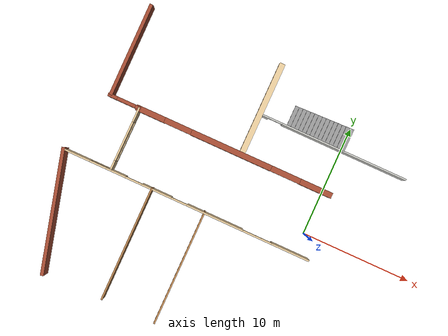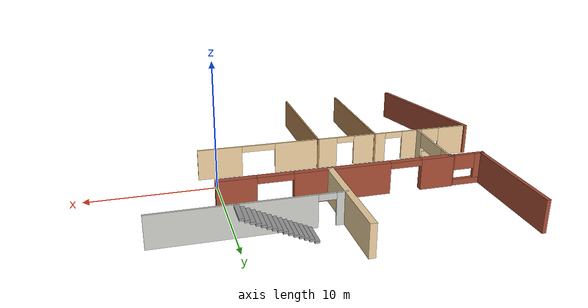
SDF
<sdf version="1.6">
 <model name="Building">
  <pose>-0.973623 0.034241 0 0 -0 0</pose>
  <link name="Stairs_0">
   <visual name="Stairs_0_Visual_0">
    <pose>-4.08117 8.87242 0.083333 0 -0 1.5708</pose>
    <geometry><box><size>2.02255 0.353633 0.166667</size></box></geometry>
    <material>
     <script><uri>file://media/materials/scripts/gazebo.material</uri><name>Gazebo/Grey</name></script>
     <ambient>1 1 1 1</ambient>
    </material>
    <meta><layer>0</layer></meta>
   </visual>
   <collision name="Stairs_0_Collision_0">
    <geometry><box><size>2.02255 0.353633 0.166667</size></box></geometry>
    <pose>-4.08117 8.87242 0.083333 0 -0 1.5708</pose>
   </collision>
   <visual name="Stairs_0_Visual_1">
    <pose>-3.72754 8.87242 0.25 0 -0 1.5708</pose>
    <geometry><box><size>2.02255 0.353633 0.166667</size></box></geometry>
    <material>
     <script><uri>file://media/materials/scripts/gazebo.material</uri><name>Gazebo/Grey</name></script>
     <ambient>1 1 1 1</ambient>
    </material>
    <meta><layer>0</layer></meta>
   </visual>
   <collision name="Stairs_0_Collision_1">
    <geometry><box><size>2.02255 0.353633 0.166667</size></box></geometry>
    <pose>-3.72754 8.87242 0.25 0 -0 1.5708</pose>
   </collision>
   <visual name="Stairs_0_Visual_2">
    <pose>-3.3739 8.87242 0.416667 0 -0 1.5708</pose>
    <geometry><box><size>2.02255 0.353633 0.166667</size></box></geometry>
    <material>
     <script><uri>file://media/materials/scripts/gazebo.material</uri><name>Gazebo/Grey</name></script>
     <ambient>1 1 1 1</ambient>
    </material>
    <meta><layer>0</layer></meta>
   </visual>
   <collision name="Stairs_0_Collision_2">
    <geometry><box><size>2.02255 0.353633 0.166667</size></box></geometry>
    <pose>-3.3739 8.87242 0.416667 0 -0 1.5708</pose>
   </collision>
   <visual name="Stairs_0_Visual_3">
    <pose>-3.02027 8.87242 0.583333 0 -0 1.5708</pose>
    <geometry><box><size>2.02255 0.353633 0.166667</size></box></geometry>
    <material>
     <script><uri>file://media/materials/scripts/gazebo.material</uri><name>Gazebo/Grey</name></script>
     <ambient>1 1 1 1</ambient>
    </material>
    <meta><layer>0</layer></meta>
   </visual>
   <collision name="Stairs_0_Collision_3">
    <geometry><box><size>2.02255 0.353633 0.166667</size></box></geometry>
    <pose>-3.02027 8.87242 0.583333 0 -0 1.5708</pose>
   </collision>
   <visual name="Stairs_0_Visual_4">
    <pose>-2.66664 8.87242 0.75 0 -0 1.5708</pose>
    <geometry><box><size>2.02255 0.353633 0.166667</size></box></geometry>
    <material>
     <script><uri>file://media/materials/scripts/gazebo.material</uri><name>Gazebo/Grey</name></script>
     <ambient>1 1 1 1</ambient>
    </material>
    <meta><layer>0</layer></meta>
   </visual>
   <collision name="Stairs_0_Collision_4">
    <geometry><box><size>2.02255 0.353633 0.166667</size></box></geometry>
    <pose>-2.66664 8.87242 0.75 0 -0 1.5708</pose>
   </collision>
   <visual name="Stairs_0_Visual_5">
    <pose>-2.313 8.87242 0.916667 0 -0 1.5708</pose>
    <geometry><box><size>2.02255 0.353633 0.166667</size></box></geometry>
    <material>
     <script><uri>file://media/materials/scripts/gazebo.material</uri><name>Gazebo/Grey</name></script>
     <ambient>1 1 1 1</ambient>
    </material>
    <meta><layer>0</layer></meta>
   </visual>
   <collision name="Stairs_0_Collision_5">
    <geometry><box><size>2.02255 0.353633 0.166667</size></box></geometry>
    <pose>-2.313 8.87242 0.916667 0 -0 1.5708</pose>
   </collision>
   <visual name="Stairs_0_Visual_6">
    <pose>-1.95937 8.87242 1.08333 0 -0 1.5708</pose>
    <geometry><box><size>2.02255 0.353633 0.166667</size></box></geometry>
    <material>
     <script><uri>file://media/materials/scripts/gazebo.material</uri><name>Gazebo/Grey</name></script>
     <ambient>1 1 1 1</ambient>
    </material>
    <meta><layer>0</layer></meta>
   </visual>
   <collision name="Stairs_0_Collision_6">
    <geometry><box><size>2.02255 0.353633 0.166667</size></box></geometry>
    <pose>-1.95937 8.87242 1.08333 0 -0 1.5708</pose>
   </collision>
   <visual name="Stairs_0_Visual_7">
    <pose>-1.60574 8.87242 1.25 0 -0 1.5708</pose>
    <geometry><box><size>2.02255 0.353633 0.166667</size></box></geometry>
    <material>
     <script><uri>file://media/materials/scripts/gazebo.material</uri><name>Gazebo/Grey</name></script>
     <ambient>1 1 1 1</ambient>
    </material>
    <meta><layer>0</layer></meta>
   </visual>
   <collision name="Stairs_0_Collision_7">
    <geometry><box><size>2.02255 0.353633 0.166667</size></box></geometry>
    <pose>-1.60574 8.87242 1.25 0 -0 1.5708</pose>
   </collision>
   <visual name="Stairs_0_Visual_8">
    <pose>-1.2521 8.87242 1.41667 0 -0 1.5708</pose>
    <geometry><box><size>2.02255 0.353633 0.166667</size></box></geometry>
    <material>
     <script><uri>file://media/materials/scripts/gazebo.material</uri><name>Gazebo/Grey</name></script>
     <ambient>1 1 1 1</ambient>
    </material>
    <meta><layer>0</layer></meta>
   </visual>
   <collision name="Stairs_0_Collision_8">
    <geometry><box><size>2.02255 0.353633 0.166667</size></box></geometry>
    <pose>-1.2521 8.87242 1.41667 0 -0 1.5708</pose>
   </collision>
   <visual name="Stairs_0_Visual_9">
    <pose>-0.898471 8.87242 1.58333 0 -0 1.5708</pose>
    <geometry><box><size>2.02255 0.353633 0.166667</size></box></geometry>
    <material>
     <script><uri>file://media/materials/scripts/gazebo.material</uri><name>Gazebo/Grey</name></script>
     <ambient>1 1 1 1</ambient>
    </material>
    <meta><layer>0</layer></meta>
   </visual>
   <collision name="Stairs_0_Collision_9">
    <geometry><box><size>2.02255 0.353633 0.166667</size></box></geometry>
    <pose>-0.898471 8.87242 1.58333 0 -0 1.5708</pose>
   </collision>
   <visual name="Stairs_0_Visual_10">
    <pose>-0.544838 8.87242 1.75 0 -0 1.5708</pose>
    <geometry><box><size>2.02255 0.353633 0.166667</size></box></geometry>
    <material>
     <script><uri>file://media/materials/scripts/gazebo.material</uri><name>Gazebo/Grey</name></script>
     <ambient>1 1 1 1</ambient>
    </material>
    <meta><layer>0</layer></meta>
   </visual>
   <collision name="Stairs_0_Collision_10">
    <geometry><box><size>2.02255 0.353633 0.166667</size></box></geometry>
    <pose>-0.544838 8.87242 1.75 0 -0 1.5708</pose>
   </collision>
   <visual name="Stairs_0_Visual_11">
    <pose>-0.191204 8.87242 1.91667 0 -0 1.5708</pose>
    <geometry><box><size>2.02255 0.353633 0.166667</size></box></geometry>
    <material>
     <script><uri>file://media/materials/scripts/gazebo.material</uri><name>Gazebo/Grey</name></script>
     <ambient>1 1 1 1</ambient>
    </material>
    <meta><layer>0</layer></meta>
   </visual>
   <collision name="Stairs_0_Collision_11">
    <geometry><box><size>2.02255 0.353633 0.166667</size></box></geometry>
    <pose>-0.191204 8.87242 1.91667 0 -0 1.5708</pose>
   </collision>
   <visual name="Stairs_0_Visual_12">
    <pose>0.162429 8.87242 2.08333 0 -0 1.5708</pose>
    <geometry><box><size>2.02255 0.353633 0.166667</size></box></geometry>
    <material>
     <script><uri>file://media/materials/scripts/gazebo.material</uri><name>Gazebo/Grey</name></script>
     <ambient>1 1 1 1</ambient>
    </material>
    <meta><layer>0</layer></meta>
   </visual>
   <collision name="Stairs_0_Collision_12">
    <geometry><box><size>2.02255 0.353633 0.166667</size></box></geometry>
    <pose>0.162429 8.87242 2.08333 0 -0 1.5708</pose>
   </collision>
   <visual name="Stairs_0_Visual_13">
    <pose>0.516062 8.87242 2.25 0 -0 1.5708</pose>
    <geometry><box><size>2.02255 0.353633 0.166667</size></box></geometry>
    <material>
     <script><uri>file://media/materials/scripts/gazebo.material</uri><name>Gazebo/Grey</name></script>
     <ambient>1 1 1 1</ambient>
    </material>
    <meta><layer>0</layer></meta>
   </visual>
   <collision name="Stairs_0_Collision_13">
    <geometry><box><size>2.02255 0.353633 0.166667</size></box></geometry>
    <pose>0.516062 8.87242 2.25 0 -0 1.5708</pose>
   </collision>
   <visual name="Stairs_0_Visual_14">
    <pose>0.869695 8.87242 2.41667 0 -0 1.5708</pose>
    <geometry><box><size>2.02255 0.353633 0.166667</size></box></geometry>
    <material>
     <script><uri>file://media/materials/scripts/gazebo.material</uri><name>Gazebo/Grey</name></script>
     <ambient>1 1 1 1</ambient>
    </material>
    <meta><layer>0</layer></meta>
   </visual>
   <collision name="Stairs_0_Collision_14">
    <geometry><box><size>2.02255 0.353633 0.166667</size></box></geometry>
    <pose>0.869695 8.87242 2.41667 0 -0 1.5708</pose>
   </collision>
  </link>
  <link name="Wall_17">
   <collision name="Wall_17_Collision">
    <geometry><box><size>8.49148 0.3 2.5</size></box></geometry>
    <pose>0 0 1.25 0 -0 0</pose>
   </collision>
   <visual name="Wall_17_Visual">
    <pose>0 0 1.25 0 -0 0</pose>
    <geometry><box><size>8.49148 0.3 2.5</size></box></geometry>
    <material>
     <script><uri>file://media/materials/scripts/gazebo.material</uri><name>Gazebo/Bricks</name></script>
     <ambient>1 1 1 1</ambient>
    </material>
    <meta><layer>0</layer></meta>
   </visual>
   <pose>-19.1444 8.2625 0 0 -0 1.5708</pose>
  </link>
  <link name="Wall_38">
   <collision name="Wall_38_Collision">
    <geometry><box><size>11.1419 0.3 2.5</size></box></geometry>
    <pose>0 0 1.25 0 -0 0</pose>
   </collision>
   <visual name="Wall_38_Visual">
    <pose>0 0 1.25 0 -0 0</pose>
    <geometry><box><size>11.1419 0.3 2.5</size></box></geometry>
    <material>
     <script><uri>file://media/materials/scripts/gazebo.material</uri><name>Gazebo/Bricks</name></script>
     <ambient>1 1 1 1</ambient>
    </material>
    <meta><layer>0</layer></meta>
   </visual>
   <pose>-19.5334 -7.09324 0 0 -0 1.82991</pose>
  </link>
  <link name="Wall_39">
   <pose>-18.7098 -1.8533 0 0 0 -2.8e-05</pose>
   <visual name="Wall_39_Visual_0">
    <pose>-1.00678 0 1.25 0 -0 0</pose>
    <geometry><box><size>2.56168 0.15 2.5</size></box></geometry>
    <material>
     <script><uri>file://media/materials/scripts/gazebo.material</uri><name>Gazebo/Grey</name></script>
     <ambient>0.921569 0.807843 0.615686 1</ambient>
    </material>
    <meta><layer>0</layer></meta>
   </visual>
   <collision name="Wall_39_Collision_0">
    <geometry><box><size>2.56168 0.15 2.5</size></box></geometry>
    <pose>-1.00678 0 1.25 0 -0 0</pose>
   </collision>
   <visual name="Wall_39_Visual_1">
    <pose>1.28084 0 0.25 0 -0 0</pose>
    <geometry><box><size>2.01356 0.15 0.5</size></box></geometry>
    <material>
     <script><uri>file://media/materials/scripts/gazebo.material</uri><name>Gazebo/Grey</name></script>
     <ambient>0.921569 0.807843 0.615686 1</ambient>
    </material>
    <meta><layer>0</layer></meta>
   </visual>
   <collision name="Wall_39_Collision_1">
    <geometry><box><size>2.01356 0.15 0.5</size></box></geometry>
    <pose>1.28084 0 0.25 0 -0 0</pose>
   </collision>
   <visual name="Wall_39_Visual_2">
    <pose>2.05678 0 1.5 0 -0 0</pose>
    <geometry><box><size>0.46168 0.15 2</size></box></geometry>
    <material>
     <script><uri>file://media/materials/scripts/gazebo.material</uri><name>Gazebo/Grey</name></script>
     <ambient>0.921569 0.807843 0.615686 1</ambient>
    </material>
    <meta><layer>0</layer></meta>
   </visual>
   <collision name="Wall_39_Collision_2">
    <geometry><box><size>0.46168 0.15 2</size></box></geometry>
    <pose>2.05678 0 1.5 0 -0 0</pose>
   </collision>
   <visual name="Wall_39_Visual_3">
    <pose>1.05 0 1.9 0 -0 0</pose>
    <geometry><box><size>1.55187 0.15 1.2</size></box></geometry>
    <material>
     <script><uri>file://media/materials/scripts/gazebo.material</uri><name>Gazebo/Grey</name></script>
     <ambient>0.921569 0.807843 0.615686 1</ambient>
    </material>
    <meta><layer>0</layer></meta>
   </visual>
   <collision name="Wall_39_Collision_3">
    <geometry><box><size>1.55187 0.15 1.2</size></box></geometry>
    <pose>1.05 0 1.9 0 -0 0</pose>
   </collision>
  </link>
  <link name="Wall_40">
   <pose>-16.4724 1.07267 0 0 -0 1.56232</pose>
   <visual name="Wall_40_Visual_0">
    <pose>-2.50508 0 1.25 0 -0 0</pose>
    <geometry><box><size>0.99212 0.15 2.5</size></box></geometry>
    <material>
     <script><uri>file://media/materials/scripts/gazebo.material</uri><name>Gazebo/Grey</name></script>
     <ambient>0.921569 0.807843 0.615686 1</ambient>
    </material>
    <meta><layer>0</layer></meta>
   </visual>
   <collision name="Wall_40_Collision_0">
    <geometry><box><size>0.99212 0.15 2.5</size></box></geometry>
    <pose>-2.50508 0 1.25 0 -0 0</pose>
   </collision>
   <visual name="Wall_40_Visual_1">
    <pose>0.49606 0 0.25 0 -0 0</pose>
    <geometry><box><size>5.01015 0.15 0.5</size></box></geometry>
    <material>
     <script><uri>file://media/materials/scripts/gazebo.material</uri><name>Gazebo/Grey</name></script>
     <ambient>0.921569 0.807843 0.615686 1</ambient>
    </material>
    <meta><layer>0</layer></meta>
   </visual>
   <collision name="Wall_40_Collision_1">
    <geometry><box><size>5.01015 0.15 0.5</size></box></geometry>
    <pose>0.49606 0 0.25 0 -0 0</pose>
   </collision>
   <visual name="Wall_40_Visual_2">
    <pose>2.31017 0 1.5 0 -0 0</pose>
    <geometry><box><size>1.38193 0.15 2</size></box></geometry>
    <material>
     <script><uri>file://media/materials/scripts/gazebo.material</uri><name>Gazebo/Grey</name></script>
     <ambient>0.921569 0.807843 0.615686 1</ambient>
    </material>
    <meta><layer>0</layer></meta>
   </visual>
   <collision name="Wall_40_Collision_2">
    <geometry><box><size>1.38193 0.15 2</size></box></geometry>
    <pose>2.31017 0 1.5 0 -0 0</pose>
   </collision>
   <visual name="Wall_40_Visual_3">
    <pose>-0.194907 0 1.9 0 -0 0</pose>
    <geometry><box><size>3.62822 0.15 1.2</size></box></geometry>
    <material>
     <script><uri>file://media/materials/scripts/gazebo.material</uri><name>Gazebo/Grey</name></script>
     <ambient>0.921569 0.807843 0.615686 1</ambient>
    </material>
    <meta><layer>0</layer></meta>
   </visual>
   <collision name="Wall_40_Collision_3">
    <geometry><box><size>3.62822 0.15 1.2</size></box></geometry>
    <pose>-0.194907 0 1.9 0 -0 0</pose>
   </collision>
  </link>
  <link name="Wall_41">
   <pose>-17.825 3.99773 0 0 0 -3.14089</pose>
   <visual name="Wall_41_Visual_0">
    <pose>-1.26981 0 1.25 0 -0 0</pose>
    <geometry><box><size>0.515248 0.3 2.5</size></box></geometry>
    <material>
     <script><uri>file://media/materials/scripts/gazebo.material</uri><name>Gazebo/Bricks</name></script>
     <ambient>1 1 1 1</ambient>
    </material>
    <meta><layer>0</layer></meta>
   </visual>
   <collision name="Wall_41_Collision_0">
    <geometry><box><size>0.515248 0.3 2.5</size></box></geometry>
    <pose>-1.26981 0 1.25 0 -0 0</pose>
   </collision>
   <visual name="Wall_41_Visual_1">
    <pose>0.257624 0 0.25 0 -0 0</pose>
    <geometry><box><size>2.53962 0.3 0.5</size></box></geometry>
    <material>
     <script><uri>file://media/materials/scripts/gazebo.material</uri><name>Gazebo/Bricks</name></script>
     <ambient>1 1 1 1</ambient>
    </material>
    <meta><layer>0</layer></meta>
   </visual>
   <collision name="Wall_41_Collision_1">
    <geometry><box><size>2.53962 0.3 0.5</size></box></geometry>
    <pose>0.257624 0 0.25 0 -0 0</pose>
   </collision>
   <visual name="Wall_41_Visual_2">
    <pose>1.10217 0 1.5 0 -0 0</pose>
    <geometry><box><size>0.850518 0.3 2</size></box></geometry>
    <material>
     <script><uri>file://media/materials/scripts/gazebo.material</uri><name>Gazebo/Bricks</name></script>
     <ambient>1 1 1 1</ambient>
    </material>
    <meta><layer>0</layer></meta>
   </visual>
   <collision name="Wall_41_Collision_2">
    <geometry><box><size>0.850518 0.3 2</size></box></geometry>
    <pose>1.10217 0 1.5 0 -0 0</pose>
   </collision>
   <visual name="Wall_41_Visual_3">
    <pose>-0.167635 0 1.9 0 -0 0</pose>
    <geometry><box><size>1.6891 0.3 1.2</size></box></geometry>
    <material>
     <script><uri>file://media/materials/scripts/gazebo.material</uri><name>Gazebo/Bricks</name></script>
     <ambient>1 1 1 1</ambient>
    </material>
    <meta><layer>0</layer></meta>
   </visual>
   <collision name="Wall_41_Collision_3">
    <geometry><box><size>1.6891 0.3 1.2</size></box></geometry>
    <pose>-0.167635 0 1.9 0 -0 0</pose>
   </collision>
  </link>
  <link name="Wall_42">
   <collision name="Wall_42_Collision">
    <geometry><box><size>0.5 0.15 2.5</size></box></geometry>
    <pose>0 0 1.25 0 -0 0</pose>
   </collision>
   <visual name="Wall_42_Visual">
    <pose>0 0 1.25 0 -0 0</pose>
    <geometry><box><size>0.5 0.15 2.5</size></box></geometry>
    <material>
     <script><uri>file://media/materials/scripts/gazebo.material</uri><name>Gazebo/Grey</name></script>
     <ambient>1 1 1 1</ambient>
    </material>
    <meta><layer>0</layer></meta>
   </visual>
   <pose>-19.2024 4.1717 0 0 -0 1.57089</pose>
  </link>
  <link name="Wall_43">
   <collision name="Wall_43_Collision">
    <geometry><box><size>0.16 0.15 2.5</size></box></geometry>
    <pose>0 0 1.25 0 -0 0</pose>
   </collision>
   <visual name="Wall_43_Visual">
    <pose>0 0 1.25 0 -0 0</pose>
    <geometry><box><size>0.16 0.15 2.5</size></box></geometry>
    <material>
     <script><uri>file://media/materials/scripts/gazebo.material</uri><name>Gazebo/Grey</name></script>
     <ambient>1 1 1 1</ambient>
    </material>
    <meta><layer>0</layer></meta>
   </visual>
   <pose>-19.1974 4.34664 0 0 -0 0</pose>
  </link>
  <link name="Wall_47">
   <pose>-7.52262 3.97255 0 0 -0 0</pose>
   <visual name="Wall_47_Visual_0">
    <pose>-7.84772 0 1.25 0 -0 0</pose>
    <geometry><box><size>2.65456 0.5 2.5</size></box></geometry>
    <material>
     <script><uri>file://media/materials/scripts/gazebo.material</uri><name>Gazebo/Bricks</name></script>
     <ambient>1 1 1 1</ambient>
    </material>
    <meta><layer>0</layer></meta>
   </visual>
   <collision name="Wall_47_Collision_0">
    <geometry><box><size>2.65456 0.5 2.5</size></box></geometry>
    <pose>-7.84772 0 1.25 0 -0 0</pose>
   </collision>
   <visual name="Wall_47_Visual_1">
    <pose>-0.271347 0 1.25 0 -0 0</pose>
    <geometry><box><size>7.49818 0.5 2.5</size></box></geometry>
    <material>
     <script><uri>file://media/materials/scripts/gazebo.material</uri><name>Gazebo/Bricks</name></script>
     <ambient>1 1 1 1</ambient>
    </material>
    <meta><layer>0</layer></meta>
   </visual>
   <collision name="Wall_47_Collision_1">
    <geometry><box><size>7.49818 0.5 2.5</size></box></geometry>
    <pose>-0.271347 0 1.25 0 -0 0</pose>
   </collision>
   <visual name="Wall_47_Visual_2">
    <pose>7.68773 0 1.25 0 -0 0</pose>
    <geometry><box><size>2.97454 0.5 2.5</size></box></geometry>
    <material>
     <script><uri>file://media/materials/scripts/gazebo.material</uri><name>Gazebo/Bricks</name></script>
     <ambient>1 1 1 1</ambient>
    </material>
    <meta><layer>0</layer></meta>
   </visual>
   <collision name="Wall_47_Collision_2">
    <geometry><box><size>2.97454 0.5 2.5</size></box></geometry>
    <pose>7.68773 0 1.25 0 -0 0</pose>
   </collision>
   <visual name="Wall_47_Visual_3">
    <pose>-5.27044 0 2.25 0 -0 0</pose>
    <geometry><box><size>2.5 0.5 0.5</size></box></geometry>
    <material>
     <script><uri>file://media/materials/scripts/gazebo.material</uri><name>Gazebo/Bricks</name></script>
     <ambient>1 1 1 1</ambient>
    </material>
    <meta><layer>0</layer></meta>
   </visual>
   <collision name="Wall_47_Collision_3">
    <geometry><box><size>2.5 0.5 0.5</size></box></geometry>
    <pose>-5.27044 0 2.25 0 -0 0</pose>
   </collision>
   <visual name="Wall_47_Visual_4">
    <pose>4.8391 0 2.25 0 -0 0</pose>
    <geometry><box><size>2.72272 0.5 0.5</size></box></geometry>
    <material>
     <script><uri>file://media/materials/scripts/gazebo.material</uri><name>Gazebo/Bricks</name></script>
     <ambient>1 1 1 1</ambient>
    </material>
    <meta><layer>0</layer></meta>
   </visual>
   <collision name="Wall_47_Collision_4">
    <geometry><box><size>2.72272 0.5 0.5</size></box></geometry>
    <pose>4.8391 0 2.25 0 -0 0</pose>
   </collision>
  </link>
  <link name="Wall_50">
   <collision name="Wall_50_Collision">
    <geometry><box><size>8.59982 0.5 2.5</size></box></geometry>
    <pose>0 0 1.25 0 -0 0</pose>
   </collision>
   <visual name="Wall_50_Visual">
    <pose>0 0 1.25 0 -0 0</pose>
    <geometry><box><size>8.59982 0.5 2.5</size></box></geometry>
    <material>
     <script><uri>file://media/materials/scripts/gazebo.material</uri><name>Gazebo/Grey</name></script>
     <ambient>0.921569 0.807843 0.615686 1</ambient>
    </material>
    <meta><layer>0</layer></meta>
   </visual>
   <pose>-6.83538 8.21676 0 0 0 -1.5708</pose>
  </link>
  <link name="Wall_54">
   <pose>-7.19729 -1.8796 0 0 0 -0.002821</pose>
   <visual name="Wall_54_Visual_0">
    <pose>-8.62498 0 1.25 0 -0 0</pose>
    <geometry><box><size>1.50004 0.15 2.5</size></box></geometry>
    <material>
     <script><uri>file://media/materials/scripts/gazebo.material</uri><name>Gazebo/Grey</name></script>
     <ambient>0.921569 0.807843 0.615686 1</ambient>
    </material>
    <meta><layer>0</layer></meta>
   </visual>
   <collision name="Wall_54_Collision_0">
    <geometry><box><size>1.50004 0.15 2.5</size></box></geometry>
    <pose>-8.62498 0 1.25 0 -0 0</pose>
   </collision>
   <visual name="Wall_54_Visual_1">
    <pose>-4.97384 0 1.25 0 -0 0</pose>
    <geometry><box><size>2.79924 0.15 2.5</size></box></geometry>
    <material>
     <script><uri>file://media/materials/scripts/gazebo.material</uri><name>Gazebo/Grey</name></script>
     <ambient>0.921569 0.807843 0.615686 1</ambient>
    </material>
    <meta><layer>0</layer></meta>
   </visual>
   <collision name="Wall_54_Collision_1">
    <geometry><box><size>2.79924 0.15 2.5</size></box></geometry>
    <pose>-4.97384 0 1.25 0 -0 0</pose>
   </collision>
   <visual name="Wall_54_Visual_2">
    <pose>0.514863 0 1.25 0 -0 0</pose>
    <geometry><box><size>5.23532 0.15 2.5</size></box></geometry>
    <material>
     <script><uri>file://media/materials/scripts/gazebo.material</uri><name>Gazebo/Grey</name></script>
     <ambient>0.921569 0.807843 0.615686 1</ambient>
    </material>
    <meta><layer>0</layer></meta>
   </visual>
   <collision name="Wall_54_Collision_2">
    <geometry><box><size>5.23532 0.15 2.5</size></box></geometry>
    <pose>0.514863 0 1.25 0 -0 0</pose>
   </collision>
   <visual name="Wall_54_Visual_3">
    <pose>7.60601 0 1.25 0 -0 0</pose>
    <geometry><box><size>3.53798 0.15 2.5</size></box></geometry>
    <material>
     <script><uri>file://media/materials/scripts/gazebo.material</uri><name>Gazebo/Grey</name></script>
     <ambient>0.921569 0.807843 0.615686 1</ambient>
    </material>
    <meta><layer>0</layer></meta>
   </visual>
   <collision name="Wall_54_Collision_3">
    <geometry><box><size>3.53798 0.15 2.5</size></box></geometry>
    <pose>7.60601 0 1.25 0 -0 0</pose>
   </collision>
   <visual name="Wall_54_Visual_4">
    <pose>-7.12421 0 2.25 0 -0 0</pose>
    <geometry><box><size>1.5015 0.15 0.5</size></box></geometry>
    <material>
     <script><uri>file://media/materials/scripts/gazebo.material</uri><name>Gazebo/Grey</name></script>
     <ambient>0.921569 0.807843 0.615686 1</ambient>
    </material>
    <meta><layer>0</layer></meta>
   </visual>
   <collision name="Wall_54_Collision_4">
    <geometry><box><size>1.5015 0.15 0.5</size></box></geometry>
    <pose>-7.12421 0 2.25 0 -0 0</pose>
   </collision>
   <visual name="Wall_54_Visual_5">
    <pose>-2.83851 0 2.25 0 -0 0</pose>
    <geometry><box><size>1.47142 0.15 0.5</size></box></geometry>
    <material>
     <script><uri>file://media/materials/scripts/gazebo.material</uri><name>Gazebo/Grey</name></script>
     <ambient>0.921569 0.807843 0.615686 1</ambient>
    </material>
    <meta><layer>0</layer></meta>
   </visual>
   <collision name="Wall_54_Collision_5">
    <geometry><box><size>1.47142 0.15 0.5</size></box></geometry>
    <pose>-2.83851 0 2.25 0 -0 0</pose>
   </collision>
   <visual name="Wall_54_Visual_6">
    <pose>4.48477 0 2.25 0 -0 0</pose>
    <geometry><box><size>2.7045 0.15 0.5</size></box></geometry>
    <material>
     <script><uri>file://media/materials/scripts/gazebo.material</uri><name>Gazebo/Grey</name></script>
     <ambient>0.921569 0.807843 0.615686 1</ambient>
    </material>
    <meta><layer>0</layer></meta>
   </visual>
   <collision name="Wall_54_Collision_6">
    <geometry><box><size>2.7045 0.15 0.5</size></box></geometry>
    <pose>4.48477 0 2.25 0 -0 0</pose>
   </collision>
  </link>
  <link name="Wall_57">
   <collision name="Wall_57_Collision">
    <geometry><box><size>10.5 0.15 2.5</size></box></geometry>
    <pose>0 0 1.25 0 -0 0</pose>
   </collision>
   <visual name="Wall_57_Visual">
    <pose>0 0 1.25 0 -0 0</pose>
    <geometry><box><size>10.5 0.15 2.5</size></box></geometry>
    <material>
     <script><uri>file://media/materials/scripts/gazebo.material</uri><name>Gazebo/Wood</name></script>
     <ambient>1 1 1 1</ambient>
    </material>
    <meta><layer>0</layer></meta>
   </visual>
   <pose>-7.67714 -7.00521 0 0 0 -1.5708</pose>
  </link>
  <link name="Wall_59">
   <collision name="Wall_59_Collision">
    <geometry><box><size>10.5 0.15 2.5</size></box></geometry>
    <pose>0 0 1.25 0 -0 0</pose>
   </collision>
   <visual name="Wall_59_Visual">
    <pose>0 0 1.25 0 -0 0</pose>
    <geometry><box><size>10.5 0.15 2.5</size></box></geometry>
    <material>
     <script><uri>file://media/materials/scripts/gazebo.material</uri><name>Gazebo/Wood</name></script>
     <ambient>1 1 1 1</ambient>
    </material>
    <meta><layer>0</layer></meta>
   </visual>
   <pose>-12.6217 -7.00521 0 0 0 -1.5708</pose>
  </link>
  <link name="Wall_82">
   <pose>-0.002831 7.83234 0 0 -0 0</pose>
   <visual name="Wall_82_Visual_0">
    <pose>-6.44296 0 1.25 0 -0 0</pose>
    <geometry><box><size>0.864077 0.15 2.5</size></box></geometry>
    <material>
     <script><uri>file://media/materials/scripts/gazebo.material</uri><name>Gazebo/CeilingTiled</name></script>
     <ambient>1 1 1 1</ambient>
    </material>
    <meta><layer>0</layer></meta>
   </visual>
   <collision name="Wall_82_Collision_0">
    <geometry><box><size>0.864077 0.15 2.5</size></box></geometry>
    <pose>-6.44296 0 1.25 0 -0 0</pose>
   </collision>
   <visual name="Wall_82_Visual_1">
    <pose>1.07119 0 1.25 0 -0 0</pose>
    <geometry><box><size>11.6076 0.15 2.5</size></box></geometry>
    <material>
     <script><uri>file://media/materials/scripts/gazebo.material</uri><name>Gazebo/CeilingTiled</name></script>
     <ambient>1 1 1 1</ambient>
    </material>
    <meta><layer>0</layer></meta>
   </visual>
   <collision name="Wall_82_Collision_1">
    <geometry><box><size>11.6076 0.15 2.5</size></box></geometry>
    <pose>1.07119 0 1.25 0 -0 0</pose>
   </collision>
   <visual name="Wall_82_Visual_2">
    <pose>-5.37177 0 2.25 0 -0 0</pose>
    <geometry><box><size>1.2783 0.15 0.5</size></box></geometry>
    <material>
     <script><uri>file://media/materials/scripts/gazebo.material</uri><name>Gazebo/CeilingTiled</name></script>
     <ambient>1 1 1 1</ambient>
    </material>
    <meta><layer>0</layer></meta>
   </visual>
   <collision name="Wall_82_Collision_2">
    <geometry><box><size>1.2783 0.15 0.5</size></box></geometry>
    <pose>-5.37177 0 2.25 0 -0 0</pose>
   </collision>
  </link>
  <static>1</static>
 </model>
</sdf>
